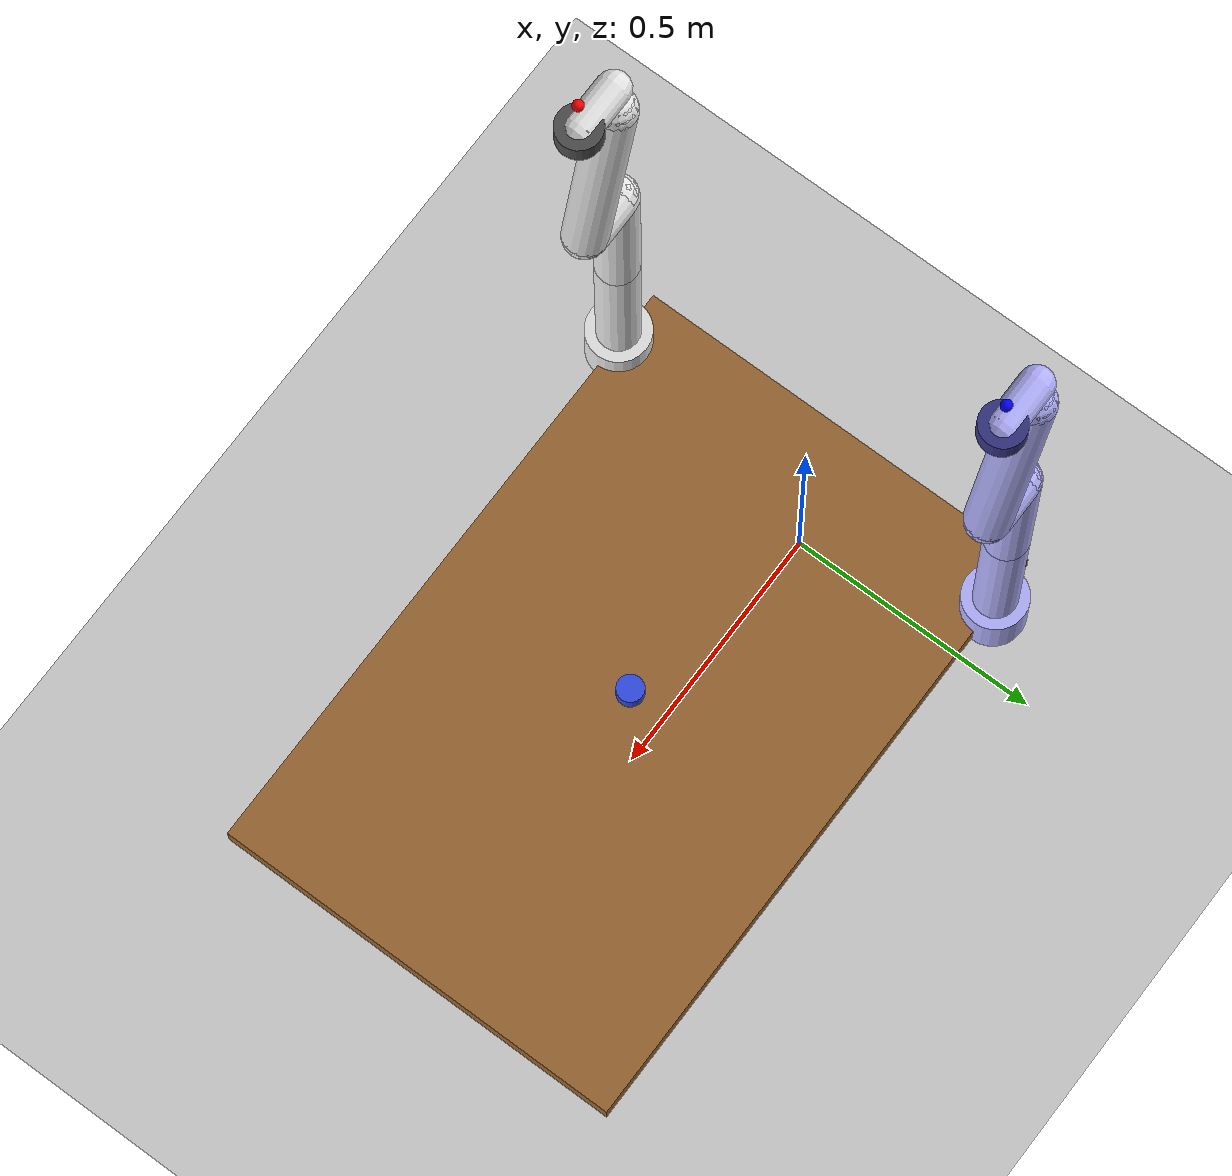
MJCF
<!--
  Dual Panda scene for PSL-Bench Phase 1.
  Two identical 7-DOF arms at different positions — for R2R translation testing.
  Frame convention: z-up, SI units (metres, radians, kg).
-->
<mujoco model="dual_panda">
  <option timestep="0.002" gravity="0 0 -9.81"/>
  <compiler angle="radian"/>

  <default>
    <joint damping="1.0" armature="0.1"/>
    <geom condim="4" friction="1 0.5 0.01"/>
  </default>

  <worldbody>
    <geom name="floor" type="plane" size="3 3 0.1" rgba="0.8 0.8 0.8 1"/>

    <!-- Table -->
    <body name="table" pos="0.5 0 0.4">
      <geom name="table_top" type="box" size="0.6 0.4 0.02" rgba="0.6 0.4 0.2 1" mass="10"/>
    </body>

    <!-- Panda A (left) -->
    <body name="panda_a_link0" pos="0 -0.4 0.42">
      <geom name="a_link0" type="cylinder" size="0.06 0.05" rgba="0.9 0.9 0.9 1" mass="2.0"/>
      <body name="panda_a_link1" pos="0 0 0.05">
        <joint name="a_joint_0" type="hinge" axis="0 0 1" range="-2.8973 2.8973" damping="10"/>
        <geom name="a_link1" type="capsule" fromto="0 0 0 0 0 0.333" size="0.04" rgba="0.9 0.9 0.9 1" mass="2.0"/>
        <body name="panda_a_link2" pos="0 0 0.333">
          <joint name="a_joint_1" type="hinge" axis="0 1 0" range="-1.7628 1.7628" damping="10"/>
          <geom name="a_link2" type="capsule" fromto="0 0 0 0 0 0.316" size="0.04" rgba="0.9 0.9 0.9 1" mass="2.0"/>
          <body name="panda_a_link3" pos="0 0 0.316">
            <joint name="a_joint_2" type="hinge" axis="0 0 1" range="-2.8973 2.8973" damping="10"/>
            <geom name="a_link3" type="capsule" fromto="0 0 0 0.0825 0 0" size="0.04" rgba="0.9 0.9 0.9 1" mass="2.0"/>
            <body name="panda_a_link4" pos="0.0825 0 0">
              <joint name="a_joint_3" type="hinge" axis="0 -1 0" range="-3.0718 -0.0698" damping="10"/>
              <geom name="a_link4" type="capsule" fromto="0 0 0 -0.0825 0 0.384" size="0.04" rgba="0.9 0.9 0.9 1" mass="2.0"/>
              <body name="panda_a_link5" pos="-0.0825 0 0.384">
                <joint name="a_joint_4" type="hinge" axis="0 0 1" range="-2.8973 2.8973" damping="10"/>
                <geom name="a_link5" type="sphere" size="0.04" rgba="0.9 0.9 0.9 1" mass="1.0"/>
                <body name="panda_a_link6" pos="0 0 0.088">
                  <joint name="a_joint_5" type="hinge" axis="0 1 0" range="-0.0175 3.7525" damping="5"/>
                  <geom name="a_link6" type="capsule" fromto="0 0 0 0.088 0 0" size="0.03" rgba="0.9 0.9 0.9 1" mass="1.0"/>
                  <body name="panda_a_link7" pos="0.088 0 0">
                    <joint name="a_joint_6" type="hinge" axis="0 0 1" range="-2.8973 2.8973" damping="2"/>
                    <geom name="a_link7" type="cylinder" size="0.04 0.02" rgba="0.3 0.3 0.3 1" mass="0.5"/>
                    <site name="a_ee_site" pos="0 0 0.107" size="0.01" rgba="1 0 0 1"/>
                  </body>
                </body>
              </body>
            </body>
          </body>
        </body>
      </body>
    </body>

    <!-- Panda B (right) -->
    <body name="panda_b_link0" pos="0 0.4 0.42">
      <geom name="b_link0" type="cylinder" size="0.06 0.05" rgba="0.7 0.7 1.0 1" mass="2.0"/>
      <body name="panda_b_link1" pos="0 0 0.05">
        <joint name="b_joint_0" type="hinge" axis="0 0 1" range="-2.8973 2.8973" damping="10"/>
        <geom name="b_link1" type="capsule" fromto="0 0 0 0 0 0.333" size="0.04" rgba="0.7 0.7 1.0 1" mass="2.0"/>
        <body name="panda_b_link2" pos="0 0 0.333">
          <joint name="b_joint_1" type="hinge" axis="0 1 0" range="-1.7628 1.7628" damping="10"/>
          <geom name="b_link2" type="capsule" fromto="0 0 0 0 0 0.316" size="0.04" rgba="0.7 0.7 1.0 1" mass="2.0"/>
          <body name="panda_b_link3" pos="0 0 0.316">
            <joint name="b_joint_2" type="hinge" axis="0 0 1" range="-2.8973 2.8973" damping="10"/>
            <geom name="b_link3" type="capsule" fromto="0 0 0 0.0825 0 0" size="0.04" rgba="0.7 0.7 1.0 1" mass="2.0"/>
            <body name="panda_b_link4" pos="0.0825 0 0">
              <joint name="b_joint_3" type="hinge" axis="0 -1 0" range="-3.0718 -0.0698" damping="10"/>
              <geom name="b_link4" type="capsule" fromto="0 0 0 -0.0825 0 0.384" size="0.04" rgba="0.7 0.7 1.0 1" mass="2.0"/>
              <body name="panda_b_link5" pos="-0.0825 0 0.384">
                <joint name="b_joint_4" type="hinge" axis="0 0 1" range="-2.8973 2.8973" damping="10"/>
                <geom name="b_link5" type="sphere" size="0.04" rgba="0.7 0.7 1.0 1" mass="1.0"/>
                <body name="panda_b_link6" pos="0 0 0.088">
                  <joint name="b_joint_5" type="hinge" axis="0 1 0" range="-0.0175 3.7525" damping="5"/>
                  <geom name="b_link6" type="capsule" fromto="0 0 0 0.088 0 0" size="0.03" rgba="0.7 0.7 1.0 1" mass="1.0"/>
                  <body name="panda_b_link7" pos="0.088 0 0">
                    <joint name="b_joint_6" type="hinge" axis="0 0 1" range="-2.8973 2.8973" damping="2"/>
                    <geom name="b_link7" type="cylinder" size="0.04 0.02" rgba="0.2 0.2 0.5 1" mass="0.5"/>
                    <site name="b_ee_site" pos="0 0 0.107" size="0.01" rgba="0 0 1 1"/>
                  </body>
                </body>
              </body>
            </body>
          </body>
        </body>
      </body>
    </body>

    <!-- Graspable object -->
    <body name="blue_gear" pos="0.5 0 0.45">
      <freejoint name="gear_free"/>
      <geom name="gear_geom" type="cylinder" size="0.025 0.015" rgba="0.2 0.3 0.9 1" mass="0.1"/>
    </body>
  </worldbody>

  <actuator>
    <position name="act_a_joint_0" joint="a_joint_0" kp="1000"/>
    <position name="act_a_joint_1" joint="a_joint_1" kp="1000"/>
    <position name="act_a_joint_2" joint="a_joint_2" kp="1000"/>
    <position name="act_a_joint_3" joint="a_joint_3" kp="1000"/>
    <position name="act_a_joint_4" joint="a_joint_4" kp="1000"/>
    <position name="act_a_joint_5" joint="a_joint_5" kp="1000"/>
    <position name="act_a_joint_6" joint="a_joint_6" kp="1000"/>
    <position name="act_b_joint_0" joint="b_joint_0" kp="1000"/>
    <position name="act_b_joint_1" joint="b_joint_1" kp="1000"/>
    <position name="act_b_joint_2" joint="b_joint_2" kp="1000"/>
    <position name="act_b_joint_3" joint="b_joint_3" kp="1000"/>
    <position name="act_b_joint_4" joint="b_joint_4" kp="1000"/>
    <position name="act_b_joint_5" joint="b_joint_5" kp="1000"/>
    <position name="act_b_joint_6" joint="b_joint_6" kp="1000"/>
  </actuator>

  <sensor>
    <!-- Panda A sensors -->
    <jointpos name="a_jpos_0" joint="a_joint_0"/>
    <jointpos name="a_jpos_1" joint="a_joint_1"/>
    <jointpos name="a_jpos_2" joint="a_joint_2"/>
    <jointpos name="a_jpos_3" joint="a_joint_3"/>
    <jointpos name="a_jpos_4" joint="a_joint_4"/>
    <jointpos name="a_jpos_5" joint="a_joint_5"/>
    <jointpos name="a_jpos_6" joint="a_joint_6"/>
    <jointvel name="a_jvel_0" joint="a_joint_0"/>
    <jointvel name="a_jvel_1" joint="a_joint_1"/>
    <jointvel name="a_jvel_2" joint="a_joint_2"/>
    <jointvel name="a_jvel_3" joint="a_joint_3"/>
    <jointvel name="a_jvel_4" joint="a_joint_4"/>
    <jointvel name="a_jvel_5" joint="a_joint_5"/>
    <jointvel name="a_jvel_6" joint="a_joint_6"/>
    <framepos name="a_ee_pos" objtype="site" objname="a_ee_site"/>
    <framequat name="a_ee_quat" objtype="site" objname="a_ee_site"/>
    <!-- Panda B sensors -->
    <jointpos name="b_jpos_0" joint="b_joint_0"/>
    <jointpos name="b_jpos_1" joint="b_joint_1"/>
    <jointpos name="b_jpos_2" joint="b_joint_2"/>
    <jointpos name="b_jpos_3" joint="b_joint_3"/>
    <jointpos name="b_jpos_4" joint="b_joint_4"/>
    <jointpos name="b_jpos_5" joint="b_joint_5"/>
    <jointpos name="b_jpos_6" joint="b_joint_6"/>
    <jointvel name="b_jvel_0" joint="b_joint_0"/>
    <jointvel name="b_jvel_1" joint="b_joint_1"/>
    <jointvel name="b_jvel_2" joint="b_joint_2"/>
    <jointvel name="b_jvel_3" joint="b_joint_3"/>
    <jointvel name="b_jvel_4" joint="b_joint_4"/>
    <jointvel name="b_jvel_5" joint="b_joint_5"/>
    <jointvel name="b_jvel_6" joint="b_joint_6"/>
    <framepos name="b_ee_pos" objtype="site" objname="b_ee_site"/>
    <framequat name="b_ee_quat" objtype="site" objname="b_ee_site"/>
  </sensor>
</mujoco>
